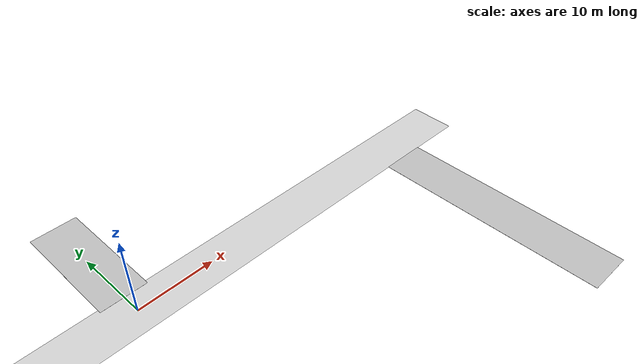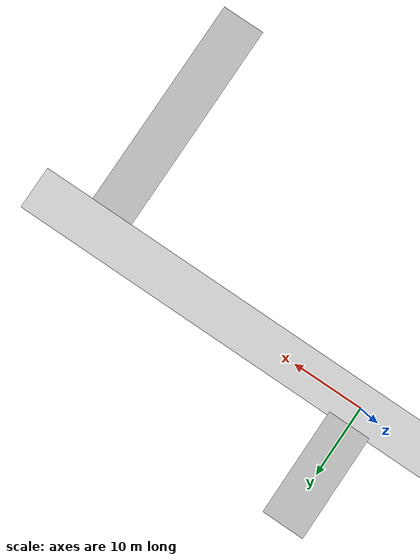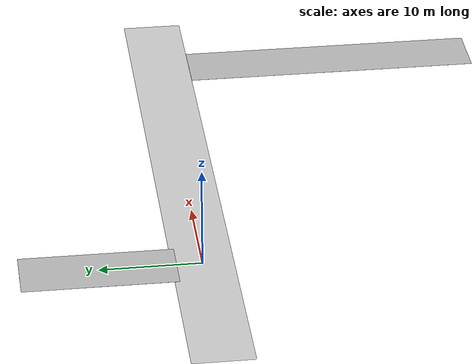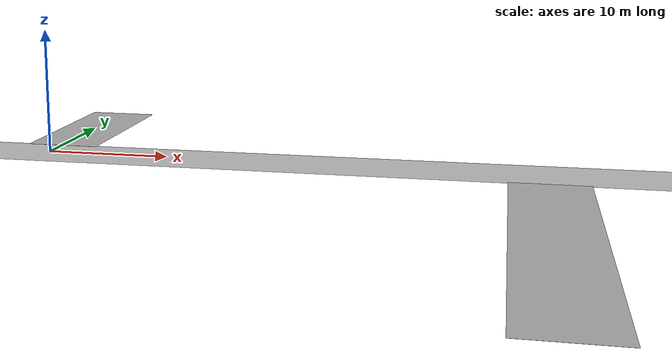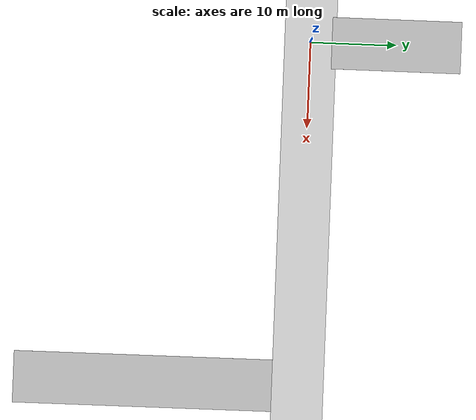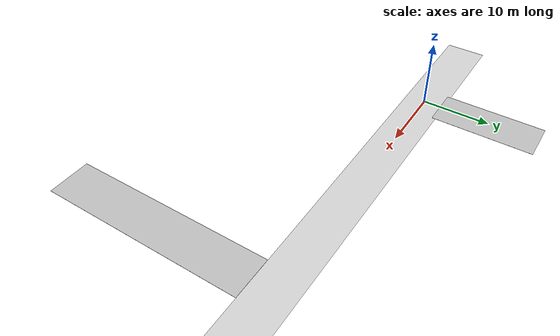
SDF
<?xml version="1.0" ?>
<sdf version="1.6">
  <model name="mesh_path">
    <static>true</static>
    <pose>0 0 0 0 0 0 </pose>
    <link name="main_road">
      <visual name="visual_main">
        <cast_shadows>false</cast_shadows>
        <pose>0 0 0 0 0 0</pose>
        <geometry>
          <plane>
            <size>100 6</size>
          </plane>
        </geometry>
      </visual>
    </link>
    <link name="side_road0">
      <visual name="visual_side0">
        <cast_shadows>false</cast_shadows>
        <pose>40 -18 0 0 0 -1.57</pose>
        <geometry>
          <plane>
            <size>30 6</size>
          </plane>
        </geometry>
      </visual>
    </link>
    <link name= "side_road1">
      <visual name="visual_side1">
        <cast_shadows>false</cast_shadows>
        <pose>0 10 0 0 0 1.57</pose>
        <geometry>
          <plane>
            <size>
              15 6
            </size>
          </plane>
        </geometry>
      </visual>
    </link>
  </model>
</sdf>
